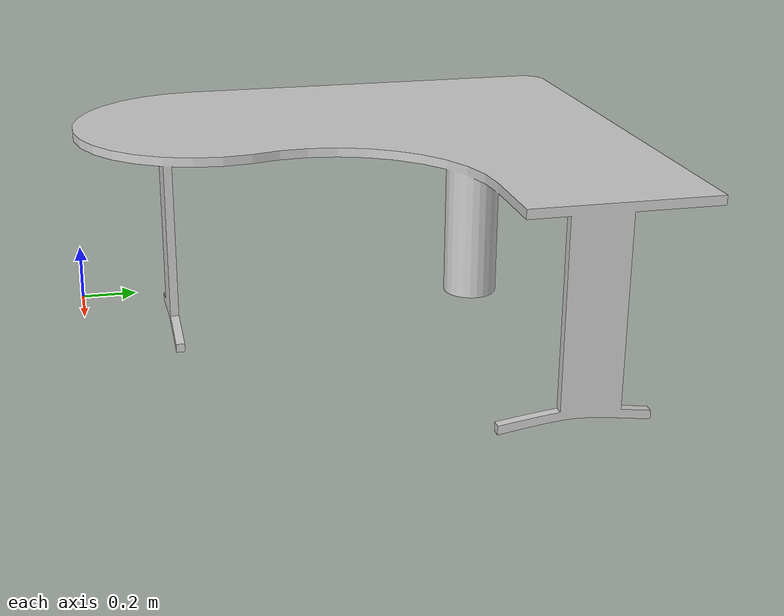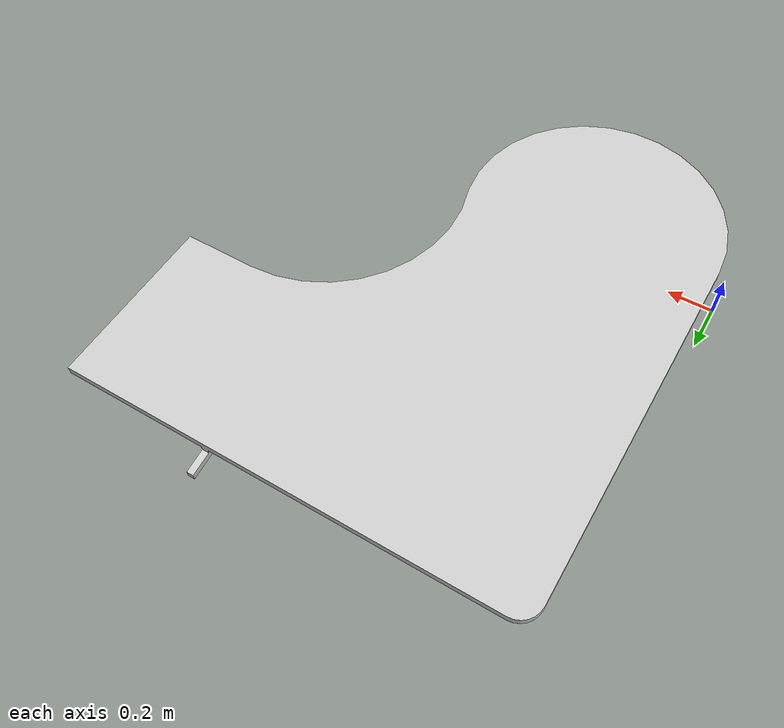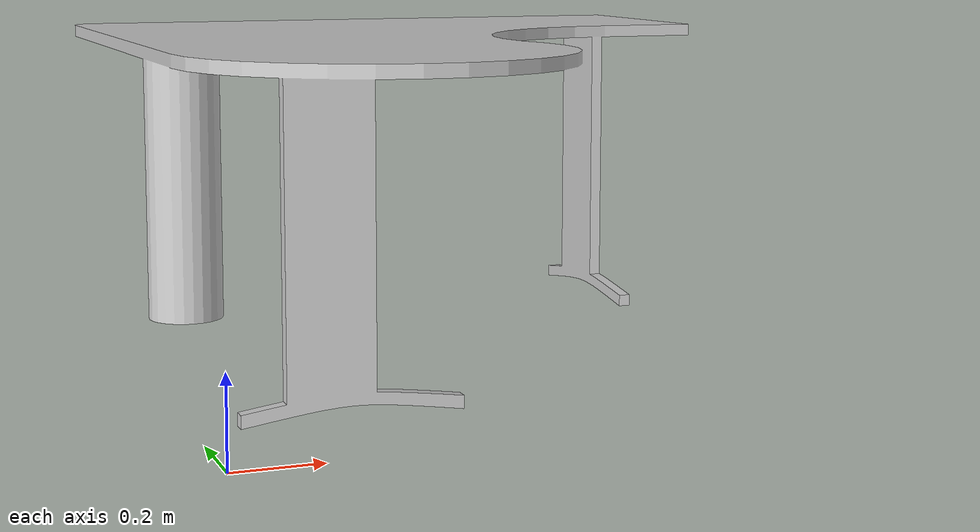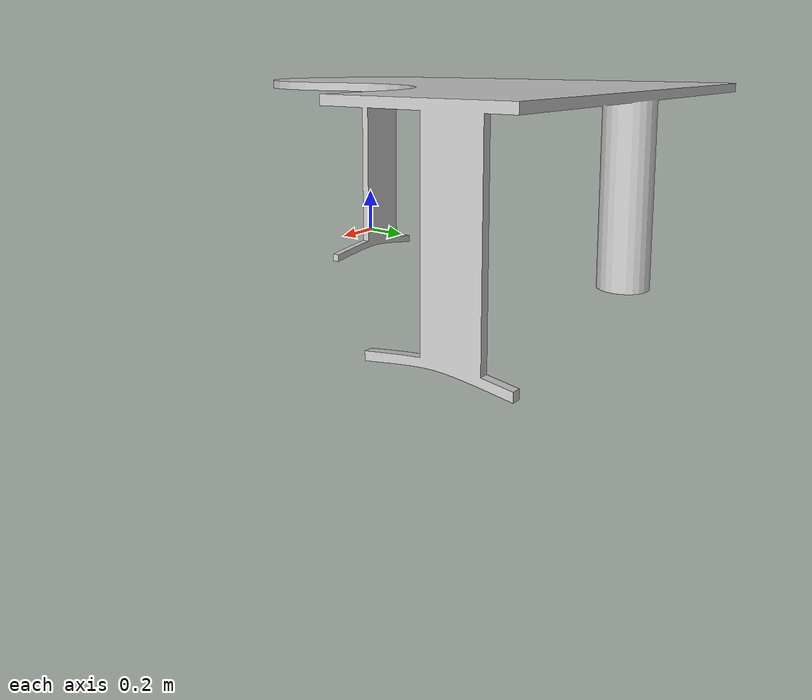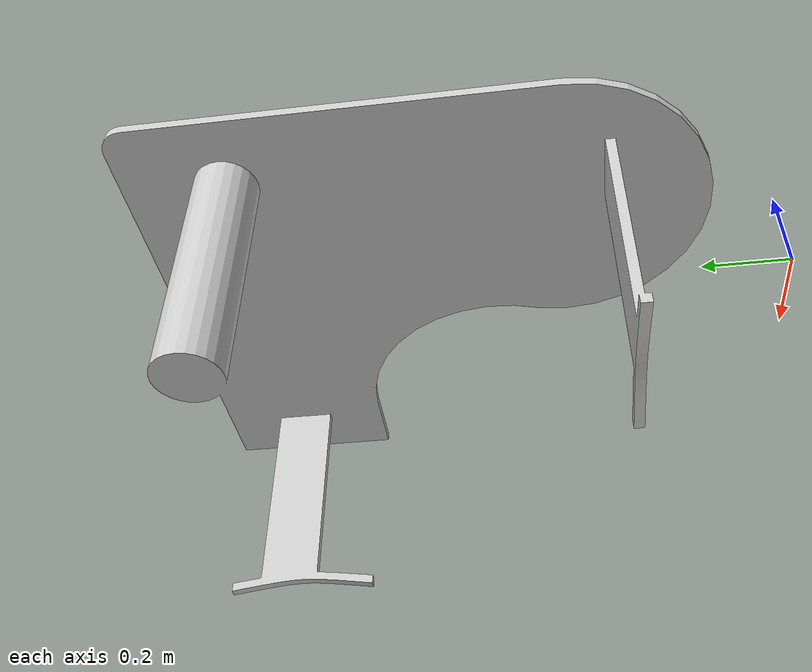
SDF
<?xml version="1.0"?>
<sdf version="1.5">
    <model name="a_mesa">
        <static>true</static>

        <link name="a_mesa">
            <pose>0 0 0 0 0 0</pose>
            <static>true</static>
            <visual name="visual">
                <geometry>
                        <mesh>
                        <uri>model://a_mesa/a_mesa.dae</uri>
                        <scale>1 1 1</scale>
                        </mesh>
                </geometry>
            </visual>
        </link>
    </model>
 </sdf>
